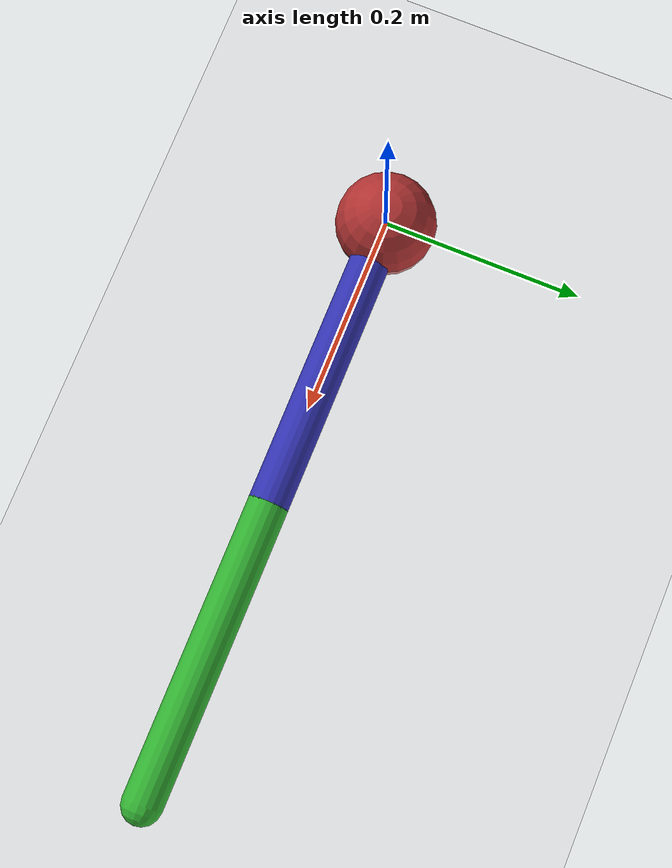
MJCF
<mujoco model="2R_robotic_arm">
    <compiler angle="radian" coordinate="local" />
    <option timestep="0.01" gravity="0 0 -9.81" />

    <worldbody>
        <light diffuse=".5 .5 .5" pos="0 0 3" dir="0 0 -1" />
        <geom type="plane" size="1 1 0.1" rgba="0.9 0.9 0.9 1" />
        <!-- Base of robotic arm-->
        <body name="base" pos="0 0 0">
            <geom type="sphere" size="0.05" rgba="0.7 0.2 0.2 1" />
            <!-- First link-->
            <body name="link1" pos="0 0 0">
                <joint name="joint1" type="hinge" axis="0 0 1" range="-3.14159 3.14159" />
                <geom type="capsule" fromto="0 0 0 0.3 0 0" size="0.02" rgba="0.2 0.2 0.7 1" />

                <!-- Second link-->
                <body name="link2" pos="0.3 0 0">
                    <joint name="joint2" type="hinge" axis="0 0 1" range="-3.14159 3.14159" />
                    <geom type="capsule" fromto="0 0 0 0.3 0 0" size="0.02" rgba="0.2 0.7 0.2 1" />
                </body>
            </body>
        </body>
    </worldbody>

    <actuator>
        <position joint="joint1" ctrlrange="0 6.28" kp="5.0"/>
        <position joint="joint2" ctrlrange="0 6.28" kp="5.0"/>
    </actuator>

</mujoco>
